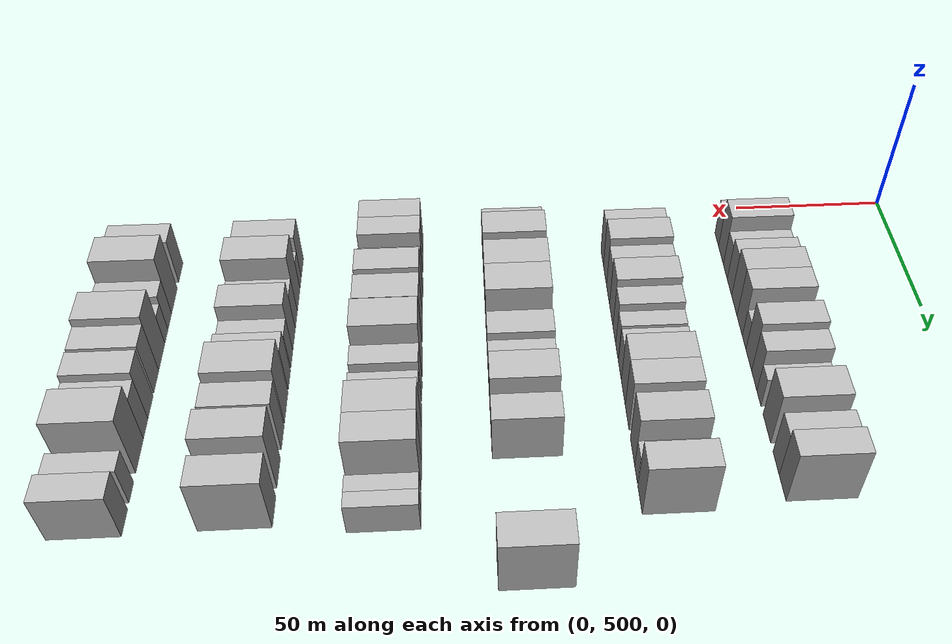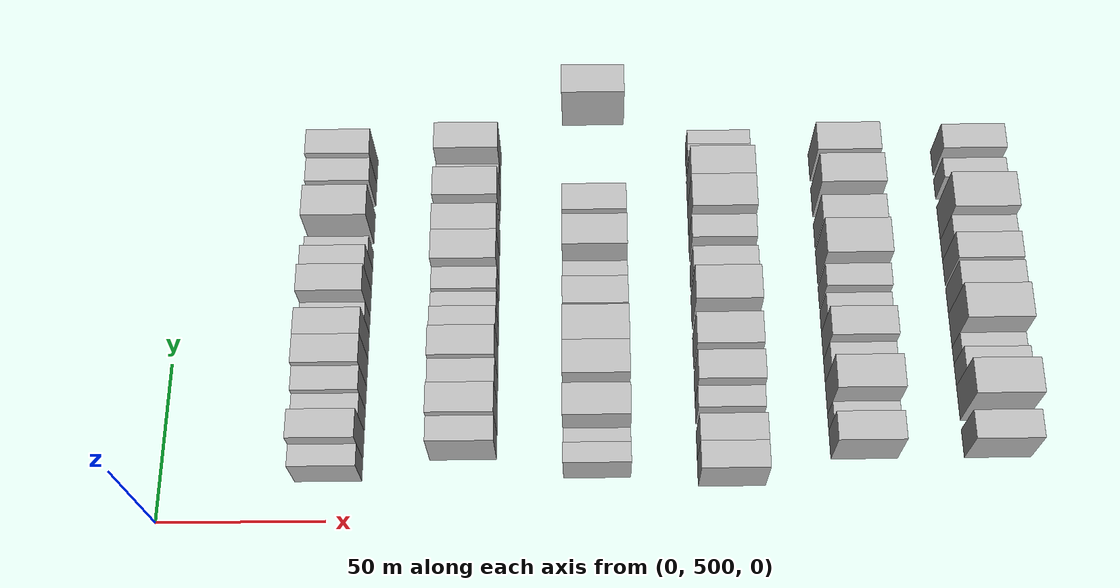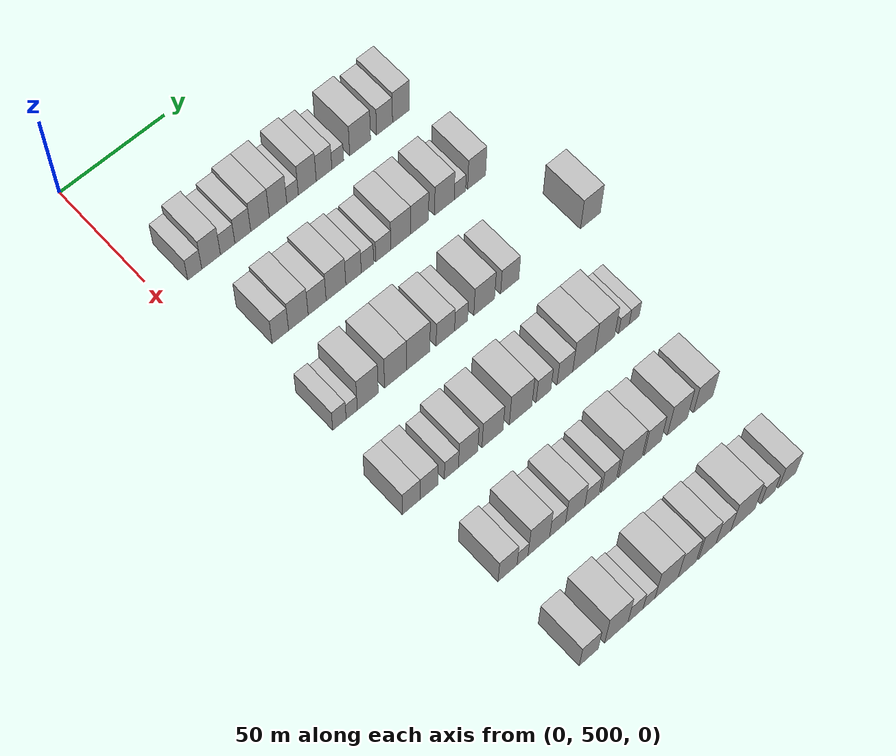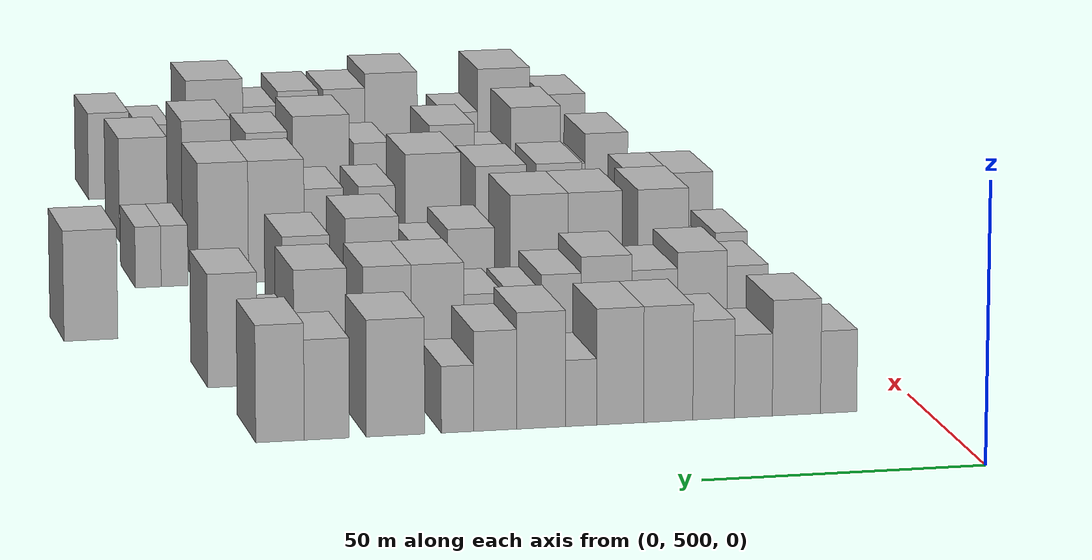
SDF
<sdf version="1.6">
 <world name="default">
  <model name="building_132">
   <static>1</static>
   <pose>50.0000 515.5262 0 0.000000 0.000000 0.000000</pose>
   <link name="link">
    <pose>0 0 7.50 0 0 0</pose>
    <collision name="collision"><geometry><box><size>20.0000 6.6461 15.0000</size></box></geometry></collision>
    <visual name="visual">
     <cast_shadows>0</cast_shadows>
     <geometry><box><size>20.0000 6.6461 15.0000</size></box></geometry>
     <material>
      <script>
       <uri>model://HANNAS_wall/materials/scripts</uri>
       <uri>model://HANNAS_wall/materials/textures</uri>
       <name>vrc/HANNAS_wall</name>
      </script>
     </material>
    </visual>
   </link>
  </model>
  <model name="building_133">
   <static>1</static>
   <pose>50.0000 523.2494 0 0.000000 0.000000 0.000000</pose>
   <link name="link">
    <pose>0 0 10.50 0 0 0</pose>
    <collision name="collision"><geometry><box><size>20.0000 8.8002 21.0000</size></box></geometry></collision>
    <visual name="visual">
     <cast_shadows>0</cast_shadows>
     <geometry><box><size>20.0000 8.8002 21.0000</size></box></geometry>
     <material>
      <script>
       <uri>model://HANNAS_wall/materials/scripts</uri>
       <uri>model://HANNAS_wall/materials/textures</uri>
       <name>vrc/HANNAS_wall</name>
      </script>
     </material>
    </visual>
   </link>
  </model>
  <model name="building_134">
   <static>1</static>
   <pose>50.0000 531.0967 0 0.000000 0.000000 0.000000</pose>
   <link name="link">
    <pose>0 0 7.50 0 0 0</pose>
    <collision name="collision"><geometry><box><size>20.0000 6.8945 15.0000</size></box></geometry></collision>
    <visual name="visual">
     <cast_shadows>0</cast_shadows>
     <geometry><box><size>20.0000 6.8945 15.0000</size></box></geometry>
     <material>
      <script>
       <uri>model://HANNAS_wall/materials/scripts</uri>
       <uri>model://HANNAS_wall/materials/textures</uri>
       <name>vrc/HANNAS_wall</name>
      </script>
     </material>
    </visual>
   </link>
  </model>
  <model name="building_135">
   <static>1</static>
   <pose>50.0000 538.3246 0 0.000000 0.000000 0.000000</pose>
   <link name="link">
    <pose>0 0 9.00 0 0 0</pose>
    <collision name="collision"><geometry><box><size>20.0000 7.5613 18.0000</size></box></geometry></collision>
    <visual name="visual">
     <cast_shadows>0</cast_shadows>
     <geometry><box><size>20.0000 7.5613 18.0000</size></box></geometry>
     <material>
      <script>
       <uri>model://HANNAS_wall/materials/scripts</uri>
       <uri>model://HANNAS_wall/materials/textures</uri>
       <name>vrc/HANNAS_wall</name>
      </script>
     </material>
    </visual>
   </link>
  </model>
  <model name="building_136">
   <static>1</static>
   <pose>50.0000 546.5774 0 0.000000 0.000000 0.000000</pose>
   <link name="link">
    <pose>0 0 10.50 0 0 0</pose>
    <collision name="collision"><geometry><box><size>20.0000 8.9442 21.0000</size></box></geometry></collision>
    <visual name="visual">
     <cast_shadows>0</cast_shadows>
     <geometry><box><size>20.0000 8.9442 21.0000</size></box></geometry>
     <material>
      <script>
       <uri>model://HANNAS_wall/materials/scripts</uri>
       <uri>model://HANNAS_wall/materials/textures</uri>
       <name>vrc/HANNAS_wall</name>
      </script>
     </material>
    </visual>
   </link>
  </model>
  <model name="building_137">
   <static>1</static>
   <pose>50.0000 555.2875 0 0.000000 0.000000 0.000000</pose>
   <link name="link">
    <pose>0 0 10.50 0 0 0</pose>
    <collision name="collision"><geometry><box><size>20.0000 8.4760 21.0000</size></box></geometry></collision>
    <visual name="visual">
     <cast_shadows>0</cast_shadows>
     <geometry><box><size>20.0000 8.4760 21.0000</size></box></geometry>
     <material>
      <script>
       <uri>model://HANNAS_wall/materials/scripts</uri>
       <uri>model://HANNAS_wall/materials/textures</uri>
       <name>vrc/HANNAS_wall</name>
      </script>
     </material>
    </visual>
   </link>
  </model>
  <model name="building_138">
   <static>1</static>
   <pose>50.0000 562.3306 0 0.000000 0.000000 0.000000</pose>
   <link name="link">
    <pose>0 0 6.00 0 0 0</pose>
    <collision name="collision"><geometry><box><size>20.0000 5.6101 12.0000</size></box></geometry></collision>
    <visual name="visual">
     <cast_shadows>0</cast_shadows>
     <geometry><box><size>20.0000 5.6101 12.0000</size></box></geometry>
     <material>
      <script>
       <uri>model://HANNAS_wall/materials/scripts</uri>
       <uri>model://HANNAS_wall/materials/textures</uri>
       <name>vrc/HANNAS_wall</name>
      </script>
     </material>
    </visual>
   </link>
  </model>
  <model name="building_139">
   <static>1</static>
   <pose>50.0000 569.5042 0 0.000000 0.000000 0.000000</pose>
   <link name="link">
    <pose>0 0 10.50 0 0 0</pose>
    <collision name="collision"><geometry><box><size>20.0000 8.7371 21.0000</size></box></geometry></collision>
    <visual name="visual">
     <cast_shadows>0</cast_shadows>
     <geometry><box><size>20.0000 8.7371 21.0000</size></box></geometry>
     <material>
      <script>
       <uri>model://HANNAS_wall/materials/scripts</uri>
       <uri>model://HANNAS_wall/materials/textures</uri>
       <name>vrc/HANNAS_wall</name>
      </script>
     </material>
    </visual>
   </link>
  </model>
  <model name="building_140">
   <static>1</static>
   <pose>50.0000 577.7151 0 0.000000 0.000000 0.000000</pose>
   <link name="link">
    <pose>0 0 9.00 0 0 0</pose>
    <collision name="collision"><geometry><box><size>20.0000 7.6848 18.0000</size></box></geometry></collision>
    <visual name="visual">
     <cast_shadows>0</cast_shadows>
     <geometry><box><size>20.0000 7.6848 18.0000</size></box></geometry>
     <material>
      <script>
       <uri>model://HANNAS_wall/materials/scripts</uri>
       <uri>model://HANNAS_wall/materials/textures</uri>
       <name>vrc/HANNAS_wall</name>
      </script>
     </material>
    </visual>
   </link>
  </model>
  <model name="building_141">
   <static>1</static>
   <pose>50.0000 584.4624 0 0.000000 0.000000 0.000000</pose>
   <link name="link">
    <pose>0 0 6.00 0 0 0</pose>
    <collision name="collision"><geometry><box><size>20.0000 5.8097 12.0000</size></box></geometry></collision>
    <visual name="visual">
     <cast_shadows>0</cast_shadows>
     <geometry><box><size>20.0000 5.8097 12.0000</size></box></geometry>
     <material>
      <script>
       <uri>model://HANNAS_wall/materials/scripts</uri>
       <uri>model://HANNAS_wall/materials/textures</uri>
       <name>vrc/HANNAS_wall</name>
      </script>
     </material>
    </visual>
   </link>
  </model>
  <model name="building_142">
   <static>1</static>
   <pose>50.0000 595.5505 0 0.000000 0.000000 0.000000</pose>
   <link name="link">
    <pose>0 0 10.50 0 0 0</pose>
    <collision name="collision"><geometry><box><size>20.0000 10.3667 21.0000</size></box></geometry></collision>
    <visual name="visual">
     <cast_shadows>0</cast_shadows>
     <geometry><box><size>20.0000 10.3667 21.0000</size></box></geometry>
     <material>
      <script>
       <uri>model://HANNAS_wall/materials/scripts</uri>
       <uri>model://HANNAS_wall/materials/textures</uri>
       <name>vrc/HANNAS_wall</name>
      </script>
     </material>
    </visual>
   </link>
  </model>
  <model name="building_143">
   <static>1</static>
   <pose>50.0000 607.7311 0 0.000000 0.000000 0.000000</pose>
   <link name="link">
    <pose>0 0 9.00 0 0 0</pose>
    <collision name="collision"><geometry><box><size>20.0000 7.9945 18.0000</size></box></geometry></collision>
    <visual name="visual">
     <cast_shadows>0</cast_shadows>
     <geometry><box><size>20.0000 7.9945 18.0000</size></box></geometry>
     <material>
      <script>
       <uri>model://HANNAS_wall/materials/scripts</uri>
       <uri>model://HANNAS_wall/materials/textures</uri>
       <name>vrc/HANNAS_wall</name>
      </script>
     </material>
    </visual>
   </link>
  </model>
  <model name="building_144">
   <static>1</static>
   <pose>50.0000 616.0171 0 0.000000 0.000000 0.000000</pose>
   <link name="link">
    <pose>0 0 10.50 0 0 0</pose>
    <collision name="collision"><geometry><box><size>20.0000 8.5775 21.0000</size></box></geometry></collision>
    <visual name="visual">
     <cast_shadows>0</cast_shadows>
     <geometry><box><size>20.0000 8.5775 21.0000</size></box></geometry>
     <material>
      <script>
       <uri>model://HANNAS_wall/materials/scripts</uri>
       <uri>model://HANNAS_wall/materials/textures</uri>
       <name>vrc/HANNAS_wall</name>
      </script>
     </material>
    </visual>
   </link>
  </model>
  <model name="building_267">
   <static>1</static>
   <pose>90.0000 522.3211 0 0.000000 0.000000 0.000000</pose>
   <link name="link">
    <pose>0 0 9.00 0 0 0</pose>
    <collision name="collision"><geometry><box><size>20.0000 7.7588 18.0000</size></box></geometry></collision>
    <visual name="visual">
     <cast_shadows>0</cast_shadows>
     <geometry><box><size>20.0000 7.7588 18.0000</size></box></geometry>
     <material>
      <script>
       <uri>model://HANNAS_wall/materials/scripts</uri>
       <uri>model://HANNAS_wall/materials/textures</uri>
       <name>vrc/HANNAS_wall</name>
      </script>
     </material>
    </visual>
   </link>
  </model>
  <model name="building_268">
   <static>1</static>
   <pose>90.0000 530.8384 0 0.000000 0.000000 0.000000</pose>
   <link name="link">
    <pose>0 0 10.50 0 0 0</pose>
    <collision name="collision"><geometry><box><size>20.0000 9.2758 21.0000</size></box></geometry></collision>
    <visual name="visual">
     <cast_shadows>0</cast_shadows>
     <geometry><box><size>20.0000 9.2758 21.0000</size></box></geometry>
     <material>
      <script>
       <uri>model://HANNAS_wall/materials/scripts</uri>
       <uri>model://HANNAS_wall/materials/textures</uri>
       <name>vrc/HANNAS_wall</name>
      </script>
     </material>
    </visual>
   </link>
  </model>
  <model name="building_269">
   <static>1</static>
   <pose>90.0000 539.7702 0 0.000000 0.000000 0.000000</pose>
   <link name="link">
    <pose>0 0 9.00 0 0 0</pose>
    <collision name="collision"><geometry><box><size>20.0000 8.5877 18.0000</size></box></geometry></collision>
    <visual name="visual">
     <cast_shadows>0</cast_shadows>
     <geometry><box><size>20.0000 8.5877 18.0000</size></box></geometry>
     <material>
      <script>
       <uri>model://HANNAS_wall/materials/scripts</uri>
       <uri>model://HANNAS_wall/materials/textures</uri>
       <name>vrc/HANNAS_wall</name>
      </script>
     </material>
    </visual>
   </link>
  </model>
  <model name="building_270">
   <static>1</static>
   <pose>90.0000 548.7886 0 0.000000 0.000000 0.000000</pose>
   <link name="link">
    <pose>0 0 10.50 0 0 0</pose>
    <collision name="collision"><geometry><box><size>20.0000 9.4491 21.0000</size></box></geometry></collision>
    <visual name="visual">
     <cast_shadows>0</cast_shadows>
     <geometry><box><size>20.0000 9.4491 21.0000</size></box></geometry>
     <material>
      <script>
       <uri>model://HANNAS_wall/materials/scripts</uri>
       <uri>model://HANNAS_wall/materials/textures</uri>
       <name>vrc/HANNAS_wall</name>
      </script>
     </material>
    </visual>
   </link>
  </model>
  <model name="building_271">
   <static>1</static>
   <pose>90.0000 557.2262 0 0.000000 0.000000 0.000000</pose>
   <link name="link">
    <pose>0 0 9.00 0 0 0</pose>
    <collision name="collision"><geometry><box><size>20.0000 7.4261 18.0000</size></box></geometry></collision>
    <visual name="visual">
     <cast_shadows>0</cast_shadows>
     <geometry><box><size>20.0000 7.4261 18.0000</size></box></geometry>
     <material>
      <script>
       <uri>model://HANNAS_wall/materials/scripts</uri>
       <uri>model://HANNAS_wall/materials/textures</uri>
       <name>vrc/HANNAS_wall</name>
      </script>
     </material>
    </visual>
   </link>
  </model>
  <model name="building_272">
   <static>1</static>
   <pose>90.0000 563.9500 0 0.000000 0.000000 0.000000</pose>
   <link name="link">
    <pose>0 0 7.50 0 0 0</pose>
    <collision name="collision"><geometry><box><size>20.0000 6.0215 15.0000</size></box></geometry></collision>
    <visual name="visual">
     <cast_shadows>0</cast_shadows>
     <geometry><box><size>20.0000 6.0215 15.0000</size></box></geometry>
     <material>
      <script>
       <uri>model://HANNAS_wall/materials/scripts</uri>
       <uri>model://HANNAS_wall/materials/textures</uri>
       <name>vrc/HANNAS_wall</name>
      </script>
     </material>
    </visual>
   </link>
  </model>
  <model name="building_273">
   <static>1</static>
   <pose>90.0000 571.6297 0 0.000000 0.000000 0.000000</pose>
   <link name="link">
    <pose>0 0 7.50 0 0 0</pose>
    <collision name="collision"><geometry><box><size>20.0000 7.3379 15.0000</size></box></geometry></collision>
    <visual name="visual">
     <cast_shadows>0</cast_shadows>
     <geometry><box><size>20.0000 7.3379 15.0000</size></box></geometry>
     <material>
      <script>
       <uri>model://HANNAS_wall/materials/scripts</uri>
       <uri>model://HANNAS_wall/materials/textures</uri>
       <name>vrc/HANNAS_wall</name>
      </script>
     </material>
    </visual>
   </link>
  </model>
  <model name="building_274">
   <static>1</static>
   <pose>90.0000 580.1791 0 0.000000 0.000000 0.000000</pose>
   <link name="link">
    <pose>0 0 10.50 0 0 0</pose>
    <collision name="collision"><geometry><box><size>20.0000 9.7610 21.0000</size></box></geometry></collision>
    <visual name="visual">
     <cast_shadows>0</cast_shadows>
     <geometry><box><size>20.0000 9.7610 21.0000</size></box></geometry>
     <material>
      <script>
       <uri>model://HANNAS_wall/materials/scripts</uri>
       <uri>model://HANNAS_wall/materials/textures</uri>
       <name>vrc/HANNAS_wall</name>
      </script>
     </material>
    </visual>
   </link>
  </model>
  <model name="building_275">
   <static>1</static>
   <pose>90.0000 589.4757 0 0.000000 0.000000 0.000000</pose>
   <link name="link">
    <pose>0 0 10.50 0 0 0</pose>
    <collision name="collision"><geometry><box><size>20.0000 8.8322 21.0000</size></box></geometry></collision>
    <visual name="visual">
     <cast_shadows>0</cast_shadows>
     <geometry><box><size>20.0000 8.8322 21.0000</size></box></geometry>
     <material>
      <script>
       <uri>model://HANNAS_wall/materials/scripts</uri>
       <uri>model://HANNAS_wall/materials/textures</uri>
       <name>vrc/HANNAS_wall</name>
      </script>
     </material>
    </visual>
   </link>
  </model>
  <model name="building_276">
   <static>1</static>
   <pose>90.0000 601.7635 0 0.000000 0.000000 0.000000</pose>
   <link name="link">
    <pose>0 0 10.50 0 0 0</pose>
    <collision name="collision"><geometry><box><size>20.0000 9.7435 21.0000</size></box></geometry></collision>
    <visual name="visual">
     <cast_shadows>0</cast_shadows>
     <geometry><box><size>20.0000 9.7435 21.0000</size></box></geometry>
     <material>
      <script>
       <uri>model://HANNAS_wall/materials/scripts</uri>
       <uri>model://HANNAS_wall/materials/textures</uri>
       <name>vrc/HANNAS_wall</name>
      </script>
     </material>
    </visual>
   </link>
  </model>
  <model name="building_277">
   <static>1</static>
   <pose>90.0000 609.4998 0 0.000000 0.000000 0.000000</pose>
   <link name="link">
    <pose>0 0 6.00 0 0 0</pose>
    <collision name="collision"><geometry><box><size>20.0000 5.7291 12.0000</size></box></geometry></collision>
    <visual name="visual">
     <cast_shadows>0</cast_shadows>
     <geometry><box><size>20.0000 5.7291 12.0000</size></box></geometry>
     <material>
      <script>
       <uri>model://HANNAS_wall/materials/scripts</uri>
       <uri>model://HANNAS_wall/materials/textures</uri>
       <name>vrc/HANNAS_wall</name>
      </script>
     </material>
    </visual>
   </link>
  </model>
  <model name="building_278">
   <static>1</static>
   <pose>90.0000 617.8781 0 0.000000 0.000000 0.000000</pose>
   <link name="link">
    <pose>0 0 10.50 0 0 0</pose>
    <collision name="collision"><geometry><box><size>20.0000 9.0274 21.0000</size></box></geometry></collision>
    <visual name="visual">
     <cast_shadows>0</cast_shadows>
     <geometry><box><size>20.0000 9.0274 21.0000</size></box></geometry>
     <material>
      <script>
       <uri>model://HANNAS_wall/materials/scripts</uri>
       <uri>model://HANNAS_wall/materials/textures</uri>
       <name>vrc/HANNAS_wall</name>
      </script>
     </material>
    </visual>
   </link>
  </model>
  <model name="building_403">
   <static>1</static>
   <pose>130.0000 515.5641 0 0.000000 0.000000 0.000000</pose>
   <link name="link">
    <pose>0 0 7.50 0 0 0</pose>
    <collision name="collision"><geometry><box><size>20.0000 6.2532 15.0000</size></box></geometry></collision>
    <visual name="visual">
     <cast_shadows>0</cast_shadows>
     <geometry><box><size>20.0000 6.2532 15.0000</size></box></geometry>
     <material>
      <script>
       <uri>model://HANNAS_wall/materials/scripts</uri>
       <uri>model://HANNAS_wall/materials/textures</uri>
       <name>vrc/HANNAS_wall</name>
      </script>
     </material>
    </visual>
   </link>
  </model>
  <model name="building_404">
   <static>1</static>
   <pose>130.0000 521.3221 0 0.000000 0.000000 0.000000</pose>
   <link name="link">
    <pose>0 0 6.00 0 0 0</pose>
    <collision name="collision"><geometry><box><size>20.0000 5.2627 12.0000</size></box></geometry></collision>
    <visual name="visual">
     <cast_shadows>0</cast_shadows>
     <geometry><box><size>20.0000 5.2627 12.0000</size></box></geometry>
     <material>
      <script>
       <uri>model://HANNAS_wall/materials/scripts</uri>
       <uri>model://HANNAS_wall/materials/textures</uri>
       <name>vrc/HANNAS_wall</name>
      </script>
     </material>
    </visual>
   </link>
  </model>
  <model name="building_405">
   <static>1</static>
   <pose>130.0000 528.8703 0 0.000000 0.000000 0.000000</pose>
   <link name="link">
    <pose>0 0 12.00 0 0 0</pose>
    <collision name="collision"><geometry><box><size>20.0000 9.8338 24.0000</size></box></geometry></collision>
    <visual name="visual">
     <cast_shadows>0</cast_shadows>
     <geometry><box><size>20.0000 9.8338 24.0000</size></box></geometry>
     <material>
      <script>
       <uri>model://HANNAS_wall/materials/scripts</uri>
       <uri>model://HANNAS_wall/materials/textures</uri>
       <name>vrc/HANNAS_wall</name>
      </script>
     </material>
    </visual>
   </link>
  </model>
  <model name="building_406">
   <static>1</static>
   <pose>130.0000 542.0344 0 0.000000 0.000000 0.000000</pose>
   <link name="link">
    <pose>0 0 12.00 0 0 0</pose>
    <collision name="collision"><geometry><box><size>20.0000 10.4944 24.0000</size></box></geometry></collision>
    <visual name="visual">
     <cast_shadows>0</cast_shadows>
     <geometry><box><size>20.0000 10.4944 24.0000</size></box></geometry>
     <material>
      <script>
       <uri>model://HANNAS_wall/materials/scripts</uri>
       <uri>model://HANNAS_wall/materials/textures</uri>
       <name>vrc/HANNAS_wall</name>
      </script>
     </material>
    </visual>
   </link>
  </model>
  <model name="building_407">
   <static>1</static>
   <pose>130.0000 552.8558 0 0.000000 0.000000 0.000000</pose>
   <link name="link">
    <pose>0 0 12.00 0 0 0</pose>
    <collision name="collision"><geometry><box><size>20.0000 11.1483 24.0000</size></box></geometry></collision>
    <visual name="visual">
     <cast_shadows>0</cast_shadows>
     <geometry><box><size>20.0000 11.1483 24.0000</size></box></geometry>
     <material>
      <script>
       <uri>model://HANNAS_wall/materials/scripts</uri>
       <uri>model://HANNAS_wall/materials/textures</uri>
       <name>vrc/HANNAS_wall</name>
      </script>
     </material>
    </visual>
   </link>
  </model>
  <model name="building_408">
   <static>1</static>
   <pose>130.0000 565.9005 0 0.000000 0.000000 0.000000</pose>
   <link name="link">
    <pose>0 0 9.00 0 0 0</pose>
    <collision name="collision"><geometry><box><size>20.0000 8.9411 18.0000</size></box></geometry></collision>
    <visual name="visual">
     <cast_shadows>0</cast_shadows>
     <geometry><box><size>20.0000 8.9411 18.0000</size></box></geometry>
     <material>
      <script>
       <uri>model://HANNAS_wall/materials/scripts</uri>
       <uri>model://HANNAS_wall/materials/textures</uri>
       <name>vrc/HANNAS_wall</name>
      </script>
     </material>
    </visual>
   </link>
  </model>
  <model name="building_409">
   <static>1</static>
   <pose>130.0000 573.5513 0 0.000000 0.000000 0.000000</pose>
   <link name="link">
    <pose>0 0 7.50 0 0 0</pose>
    <collision name="collision"><geometry><box><size>20.0000 6.3604 15.0000</size></box></geometry></collision>
    <visual name="visual">
     <cast_shadows>0</cast_shadows>
     <geometry><box><size>20.0000 6.3604 15.0000</size></box></geometry>
     <material>
      <script>
       <uri>model://HANNAS_wall/materials/scripts</uri>
       <uri>model://HANNAS_wall/materials/textures</uri>
       <name>vrc/HANNAS_wall</name>
      </script>
     </material>
    </visual>
   </link>
  </model>
  <model name="building_410">
   <static>1</static>
   <pose>130.0000 584.8216 0 0.000000 0.000000 0.000000</pose>
   <link name="link">
    <pose>0 0 10.50 0 0 0</pose>
    <collision name="collision"><geometry><box><size>20.0000 10.1803 21.0000</size></box></geometry></collision>
    <visual name="visual">
     <cast_shadows>0</cast_shadows>
     <geometry><box><size>20.0000 10.1803 21.0000</size></box></geometry>
     <material>
      <script>
       <uri>model://HANNAS_wall/materials/scripts</uri>
       <uri>model://HANNAS_wall/materials/textures</uri>
       <name>vrc/HANNAS_wall</name>
      </script>
     </material>
    </visual>
   </link>
  </model>
  <model name="building_411">
   <static>1</static>
   <pose>130.0000 597.3953 0 0.000000 0.000000 0.000000</pose>
   <link name="link">
    <pose>0 0 9.00 0 0 0</pose>
    <collision name="collision"><geometry><box><size>20.0000 8.9670 18.0000</size></box></geometry></collision>
    <visual name="visual">
     <cast_shadows>0</cast_shadows>
     <geometry><box><size>20.0000 8.9670 18.0000</size></box></geometry>
     <material>
      <script>
       <uri>model://HANNAS_wall/materials/scripts</uri>
       <uri>model://HANNAS_wall/materials/textures</uri>
       <name>vrc/HANNAS_wall</name>
      </script>
     </material>
    </visual>
   </link>
  </model>
  <model name="building_412">
   <static>1</static>
   <pose>130.0000 638.0306 0 0.000000 0.000000 0.000000</pose>
   <link name="link">
    <pose>0 0 10.50 0 0 0</pose>
    <collision name="collision"><geometry><box><size>20.0000 10.1012 21.0000</size></box></geometry></collision>
    <visual name="visual">
     <cast_shadows>0</cast_shadows>
     <geometry><box><size>20.0000 10.1012 21.0000</size></box></geometry>
     <material>
      <script>
       <uri>model://HANNAS_wall/materials/scripts</uri>
       <uri>model://HANNAS_wall/materials/textures</uri>
       <name>vrc/HANNAS_wall</name>
      </script>
     </material>
    </visual>
   </link>
  </model>
  <model name="building_541">
   <static>1</static>
   <pose>170.0000 513.5958 0 0.000000 0.000000 0.000000</pose>
   <link name="link">
    <pose>0 0 9.00 0 0 0</pose>
    <collision name="collision"><geometry><box><size>20.0000 8.2588 18.0000</size></box></geometry></collision>
    <visual name="visual">
     <cast_shadows>0</cast_shadows>
     <geometry><box><size>20.0000 8.2588 18.0000</size></box></geometry>
     <material>
      <script>
       <uri>model://HANNAS_wall/materials/scripts</uri>
       <uri>model://HANNAS_wall/materials/textures</uri>
       <name>vrc/HANNAS_wall</name>
      </script>
     </material>
    </visual>
   </link>
  </model>
  <model name="building_542">
   <static>1</static>
   <pose>170.0000 521.8927 0 0.000000 0.000000 0.000000</pose>
   <link name="link">
    <pose>0 0 9.00 0 0 0</pose>
    <collision name="collision"><geometry><box><size>20.0000 8.3351 18.0000</size></box></geometry></collision>
    <visual name="visual">
     <cast_shadows>0</cast_shadows>
     <geometry><box><size>20.0000 8.3351 18.0000</size></box></geometry>
     <material>
      <script>
       <uri>model://HANNAS_wall/materials/scripts</uri>
       <uri>model://HANNAS_wall/materials/textures</uri>
       <name>vrc/HANNAS_wall</name>
      </script>
     </material>
    </visual>
   </link>
  </model>
  <model name="building_543">
   <static>1</static>
   <pose>170.0000 532.3961 0 0.000000 0.000000 0.000000</pose>
   <link name="link">
    <pose>0 0 7.50 0 0 0</pose>
    <collision name="collision"><geometry><box><size>20.0000 6.6717 15.0000</size></box></geometry></collision>
    <visual name="visual">
     <cast_shadows>0</cast_shadows>
     <geometry><box><size>20.0000 6.6717 15.0000</size></box></geometry>
     <material>
      <script>
       <uri>model://HANNAS_wall/materials/scripts</uri>
       <uri>model://HANNAS_wall/materials/textures</uri>
       <name>vrc/HANNAS_wall</name>
      </script>
     </material>
    </visual>
   </link>
  </model>
  <model name="building_544">
   <static>1</static>
   <pose>170.0000 540.2897 0 0.000000 0.000000 0.000000</pose>
   <link name="link">
    <pose>0 0 10.50 0 0 0</pose>
    <collision name="collision"><geometry><box><size>20.0000 9.1155 21.0000</size></box></geometry></collision>
    <visual name="visual">
     <cast_shadows>0</cast_shadows>
     <geometry><box><size>20.0000 9.1155 21.0000</size></box></geometry>
     <material>
      <script>
       <uri>model://HANNAS_wall/materials/scripts</uri>
       <uri>model://HANNAS_wall/materials/textures</uri>
       <name>vrc/HANNAS_wall</name>
      </script>
     </material>
    </visual>
   </link>
  </model>
  <model name="building_545">
   <static>1</static>
   <pose>170.0000 551.8813 0 0.000000 0.000000 0.000000</pose>
   <link name="link">
    <pose>0 0 10.50 0 0 0</pose>
    <collision name="collision"><geometry><box><size>20.0000 10.0677 21.0000</size></box></geometry></collision>
    <visual name="visual">
     <cast_shadows>0</cast_shadows>
     <geometry><box><size>20.0000 10.0677 21.0000</size></box></geometry>
     <material>
      <script>
       <uri>model://HANNAS_wall/materials/scripts</uri>
       <uri>model://HANNAS_wall/materials/textures</uri>
       <name>vrc/HANNAS_wall</name>
      </script>
     </material>
    </visual>
   </link>
  </model>
  <model name="building_546">
   <static>1</static>
   <pose>170.0000 565.3752 0 0.000000 0.000000 0.000000</pose>
   <link name="link">
    <pose>0 0 12.00 0 0 0</pose>
    <collision name="collision"><geometry><box><size>20.0000 10.9200 24.0000</size></box></geometry></collision>
    <visual name="visual">
     <cast_shadows>0</cast_shadows>
     <geometry><box><size>20.0000 10.9200 24.0000</size></box></geometry>
     <material>
      <script>
       <uri>model://HANNAS_wall/materials/scripts</uri>
       <uri>model://HANNAS_wall/materials/textures</uri>
       <name>vrc/HANNAS_wall</name>
      </script>
     </material>
    </visual>
   </link>
  </model>
  <model name="building_547">
   <static>1</static>
   <pose>170.0000 576.4407 0 0.000000 0.000000 0.000000</pose>
   <link name="link">
    <pose>0 0 9.00 0 0 0</pose>
    <collision name="collision"><geometry><box><size>20.0000 7.2109 18.0000</size></box></geometry></collision>
    <visual name="visual">
     <cast_shadows>0</cast_shadows>
     <geometry><box><size>20.0000 7.2109 18.0000</size></box></geometry>
     <material>
      <script>
       <uri>model://HANNAS_wall/materials/scripts</uri>
       <uri>model://HANNAS_wall/materials/textures</uri>
       <name>vrc/HANNAS_wall</name>
      </script>
     </material>
    </visual>
   </link>
  </model>
  <model name="building_548">
   <static>1</static>
   <pose>170.0000 586.9079 0 0.000000 0.000000 0.000000</pose>
   <link name="link">
    <pose>0 0 9.00 0 0 0</pose>
    <collision name="collision"><geometry><box><size>20.0000 7.7235 18.0000</size></box></geometry></collision>
    <visual name="visual">
     <cast_shadows>0</cast_shadows>
     <geometry><box><size>20.0000 7.7235 18.0000</size></box></geometry>
     <material>
      <script>
       <uri>model://HANNAS_wall/materials/scripts</uri>
       <uri>model://HANNAS_wall/materials/textures</uri>
       <name>vrc/HANNAS_wall</name>
      </script>
     </material>
    </visual>
   </link>
  </model>
  <model name="building_549">
   <static>1</static>
   <pose>170.0000 596.2487 0 0.000000 0.000000 0.000000</pose>
   <link name="link">
    <pose>0 0 12.00 0 0 0</pose>
    <collision name="collision"><geometry><box><size>20.0000 10.9581 24.0000</size></box></geometry></collision>
    <visual name="visual">
     <cast_shadows>0</cast_shadows>
     <geometry><box><size>20.0000 10.9581 24.0000</size></box></geometry>
     <material>
      <script>
       <uri>model://HANNAS_wall/materials/scripts</uri>
       <uri>model://HANNAS_wall/materials/textures</uri>
       <name>vrc/HANNAS_wall</name>
      </script>
     </material>
    </visual>
   </link>
  </model>
  <model name="building_550">
   <static>1</static>
   <pose>170.0000 606.6395 0 0.000000 0.000000 0.000000</pose>
   <link name="link">
    <pose>0 0 12.00 0 0 0</pose>
    <collision name="collision"><geometry><box><size>20.0000 9.8235 24.0000</size></box></geometry></collision>
    <visual name="visual">
     <cast_shadows>0</cast_shadows>
     <geometry><box><size>20.0000 9.8235 24.0000</size></box></geometry>
     <material>
      <script>
       <uri>model://HANNAS_wall/materials/scripts</uri>
       <uri>model://HANNAS_wall/materials/textures</uri>
       <name>vrc/HANNAS_wall</name>
      </script>
     </material>
    </visual>
   </link>
  </model>
  <model name="building_551">
   <static>1</static>
   <pose>170.0000 616.1793 0 0.000000 0.000000 0.000000</pose>
   <link name="link">
    <pose>0 0 6.00 0 0 0</pose>
    <collision name="collision"><geometry><box><size>20.0000 5.2561 12.0000</size></box></geometry></collision>
    <visual name="visual">
     <cast_shadows>0</cast_shadows>
     <geometry><box><size>20.0000 5.2561 12.0000</size></box></geometry>
     <material>
      <script>
       <uri>model://HANNAS_wall/materials/scripts</uri>
       <uri>model://HANNAS_wall/materials/textures</uri>
       <name>vrc/HANNAS_wall</name>
      </script>
     </material>
    </visual>
   </link>
  </model>
  <model name="building_552">
   <static>1</static>
   <pose>170.0000 621.3122 0 0.000000 0.000000 0.000000</pose>
   <link name="link">
    <pose>0 0 6.00 0 0 0</pose>
    <collision name="collision"><geometry><box><size>20.0000 5.0098 12.0000</size></box></geometry></collision>
    <visual name="visual">
     <cast_shadows>0</cast_shadows>
     <geometry><box><size>20.0000 5.0098 12.0000</size></box></geometry>
     <material>
      <script>
       <uri>model://HANNAS_wall/materials/scripts</uri>
       <uri>model://HANNAS_wall/materials/textures</uri>
       <name>vrc/HANNAS_wall</name>
      </script>
     </material>
    </visual>
   </link>
  </model>
  <model name="building_684">
   <static>1</static>
   <pose>210.0000 521.8727 0 0.000000 0.000000 0.000000</pose>
   <link name="link">
    <pose>0 0 9.00 0 0 0</pose>
    <collision name="collision"><geometry><box><size>20.0000 8.8492 18.0000</size></box></geometry></collision>
    <visual name="visual">
     <cast_shadows>0</cast_shadows>
     <geometry><box><size>20.0000 8.8492 18.0000</size></box></geometry>
     <material>
      <script>
       <uri>model://HANNAS_wall/materials/scripts</uri>
       <uri>model://HANNAS_wall/materials/textures</uri>
       <name>vrc/HANNAS_wall</name>
      </script>
     </material>
    </visual>
   </link>
  </model>
  <model name="building_685">
   <static>1</static>
   <pose>210.0000 528.8601 0 0.000000 0.000000 0.000000</pose>
   <link name="link">
    <pose>0 0 6.00 0 0 0</pose>
    <collision name="collision"><geometry><box><size>20.0000 5.1255 12.0000</size></box></geometry></collision>
    <visual name="visual">
     <cast_shadows>0</cast_shadows>
     <geometry><box><size>20.0000 5.1255 12.0000</size></box></geometry>
     <material>
      <script>
       <uri>model://HANNAS_wall/materials/scripts</uri>
       <uri>model://HANNAS_wall/materials/textures</uri>
       <name>vrc/HANNAS_wall</name>
      </script>
     </material>
    </visual>
   </link>
  </model>
  <model name="building_686">
   <static>1</static>
   <pose>210.0000 536.5285 0 0.000000 0.000000 0.000000</pose>
   <link name="link">
    <pose>0 0 12.00 0 0 0</pose>
    <collision name="collision"><geometry><box><size>20.0000 10.2111 24.0000</size></box></geometry></collision>
    <visual name="visual">
     <cast_shadows>0</cast_shadows>
     <geometry><box><size>20.0000 10.2111 24.0000</size></box></geometry>
     <material>
      <script>
       <uri>model://HANNAS_wall/materials/scripts</uri>
       <uri>model://HANNAS_wall/materials/textures</uri>
       <name>vrc/HANNAS_wall</name>
      </script>
     </material>
    </visual>
   </link>
  </model>
  <model name="building_687">
   <static>1</static>
   <pose>210.0000 545.3719 0 0.000000 0.000000 0.000000</pose>
   <link name="link">
    <pose>0 0 7.50 0 0 0</pose>
    <collision name="collision"><geometry><box><size>20.0000 7.4758 15.0000</size></box></geometry></collision>
    <visual name="visual">
     <cast_shadows>0</cast_shadows>
     <geometry><box><size>20.0000 7.4758 15.0000</size></box></geometry>
     <material>
      <script>
       <uri>model://HANNAS_wall/materials/scripts</uri>
       <uri>model://HANNAS_wall/materials/textures</uri>
       <name>vrc/HANNAS_wall</name>
      </script>
     </material>
    </visual>
   </link>
  </model>
  <model name="building_688">
   <static>1</static>
   <pose>210.0000 553.6982 0 0.000000 0.000000 0.000000</pose>
   <link name="link">
    <pose>0 0 10.50 0 0 0</pose>
    <collision name="collision"><geometry><box><size>20.0000 9.1766 21.0000</size></box></geometry></collision>
    <visual name="visual">
     <cast_shadows>0</cast_shadows>
     <geometry><box><size>20.0000 9.1766 21.0000</size></box></geometry>
     <material>
      <script>
       <uri>model://HANNAS_wall/materials/scripts</uri>
       <uri>model://HANNAS_wall/materials/textures</uri>
       <name>vrc/HANNAS_wall</name>
      </script>
     </material>
    </visual>
   </link>
  </model>
  <model name="building_689">
   <static>1</static>
   <pose>210.0000 561.7894 0 0.000000 0.000000 0.000000</pose>
   <link name="link">
    <pose>0 0 7.50 0 0 0</pose>
    <collision name="collision"><geometry><box><size>20.0000 7.0058 15.0000</size></box></geometry></collision>
    <visual name="visual">
     <cast_shadows>0</cast_shadows>
     <geometry><box><size>20.0000 7.0058 15.0000</size></box></geometry>
     <material>
      <script>
       <uri>model://HANNAS_wall/materials/scripts</uri>
       <uri>model://HANNAS_wall/materials/textures</uri>
       <name>vrc/HANNAS_wall</name>
      </script>
     </material>
    </visual>
   </link>
  </model>
  <model name="building_690">
   <static>1</static>
   <pose>210.0000 569.9655 0 0.000000 0.000000 0.000000</pose>
   <link name="link">
    <pose>0 0 9.00 0 0 0</pose>
    <collision name="collision"><geometry><box><size>20.0000 7.3466 18.0000</size></box></geometry></collision>
    <visual name="visual">
     <cast_shadows>0</cast_shadows>
     <geometry><box><size>20.0000 7.3466 18.0000</size></box></geometry>
     <material>
      <script>
       <uri>model://HANNAS_wall/materials/scripts</uri>
       <uri>model://HANNAS_wall/materials/textures</uri>
       <name>vrc/HANNAS_wall</name>
      </script>
     </material>
    </visual>
   </link>
  </model>
  <model name="building_691">
   <static>1</static>
   <pose>210.0000 580.3676 0 0.000000 0.000000 0.000000</pose>
   <link name="link">
    <pose>0 0 12.00 0 0 0</pose>
    <collision name="collision"><geometry><box><size>20.0000 11.4576 24.0000</size></box></geometry></collision>
    <visual name="visual">
     <cast_shadows>0</cast_shadows>
     <geometry><box><size>20.0000 11.4576 24.0000</size></box></geometry>
     <material>
      <script>
       <uri>model://HANNAS_wall/materials/scripts</uri>
       <uri>model://HANNAS_wall/materials/textures</uri>
       <name>vrc/HANNAS_wall</name>
      </script>
     </material>
    </visual>
   </link>
  </model>
  <model name="building_692">
   <static>1</static>
   <pose>210.0000 591.3234 0 0.000000 0.000000 0.000000</pose>
   <link name="link">
    <pose>0 0 10.50 0 0 0</pose>
    <collision name="collision"><geometry><box><size>20.0000 8.4539 21.0000</size></box></geometry></collision>
    <visual name="visual">
     <cast_shadows>0</cast_shadows>
     <geometry><box><size>20.0000 8.4539 21.0000</size></box></geometry>
     <material>
      <script>
       <uri>model://HANNAS_wall/materials/scripts</uri>
       <uri>model://HANNAS_wall/materials/textures</uri>
       <name>vrc/HANNAS_wall</name>
      </script>
     </material>
    </visual>
   </link>
  </model>
  <model name="building_693">
   <static>1</static>
   <pose>210.0000 603.5161 0 0.000000 0.000000 0.000000</pose>
   <link name="link">
    <pose>0 0 12.00 0 0 0</pose>
    <collision name="collision"><geometry><box><size>20.0000 9.9314 24.0000</size></box></geometry></collision>
    <visual name="visual">
     <cast_shadows>0</cast_shadows>
     <geometry><box><size>20.0000 9.9314 24.0000</size></box></geometry>
     <material>
      <script>
       <uri>model://HANNAS_wall/materials/scripts</uri>
       <uri>model://HANNAS_wall/materials/textures</uri>
       <name>vrc/HANNAS_wall</name>
      </script>
     </material>
    </visual>
   </link>
  </model>
  <model name="building_694">
   <static>1</static>
   <pose>210.0000 616.3076 0 0.000000 0.000000 0.000000</pose>
   <link name="link">
    <pose>0 0 10.50 0 0 0</pose>
    <collision name="collision"><geometry><box><size>20.0000 9.6517 21.0000</size></box></geometry></collision>
    <visual name="visual">
     <cast_shadows>0</cast_shadows>
     <geometry><box><size>20.0000 9.6517 21.0000</size></box></geometry>
     <material>
      <script>
       <uri>model://HANNAS_wall/materials/scripts</uri>
       <uri>model://HANNAS_wall/materials/textures</uri>
       <name>vrc/HANNAS_wall</name>
      </script>
     </material>
    </visual>
   </link>
  </model>
  <model name="building_815">
   <static>1</static>
   <pose>250.0000 521.8545 0 0.000000 0.000000 0.000000</pose>
   <link name="link">
    <pose>0 0 9.00 0 0 0</pose>
    <collision name="collision"><geometry><box><size>20.0000 8.8026 18.0000</size></box></geometry></collision>
    <visual name="visual">
     <cast_shadows>0</cast_shadows>
     <geometry><box><size>20.0000 8.8026 18.0000</size></box></geometry>
     <material>
      <script>
       <uri>model://HANNAS_wall/materials/scripts</uri>
       <uri>model://HANNAS_wall/materials/textures</uri>
       <name>vrc/HANNAS_wall</name>
      </script>
     </material>
    </visual>
   </link>
  </model>
  <model name="building_816">
   <static>1</static>
   <pose>250.0000 534.7365 0 0.000000 0.000000 0.000000</pose>
   <link name="link">
    <pose>0 0 12.00 0 0 0</pose>
    <collision name="collision"><geometry><box><size>20.0000 10.9612 24.0000</size></box></geometry></collision>
    <visual name="visual">
     <cast_shadows>0</cast_shadows>
     <geometry><box><size>20.0000 10.9612 24.0000</size></box></geometry>
     <material>
      <script>
       <uri>model://HANNAS_wall/materials/scripts</uri>
       <uri>model://HANNAS_wall/materials/textures</uri>
       <name>vrc/HANNAS_wall</name>
      </script>
     </material>
    </visual>
   </link>
  </model>
  <model name="building_817">
   <static>1</static>
   <pose>250.0000 543.7622 0 0.000000 0.000000 0.000000</pose>
   <link name="link">
    <pose>0 0 7.50 0 0 0</pose>
    <collision name="collision"><geometry><box><size>20.0000 7.0902 15.0000</size></box></geometry></collision>
    <visual name="visual">
     <cast_shadows>0</cast_shadows>
     <geometry><box><size>20.0000 7.0902 15.0000</size></box></geometry>
     <material>
      <script>
       <uri>model://HANNAS_wall/materials/scripts</uri>
       <uri>model://HANNAS_wall/materials/textures</uri>
       <name>vrc/HANNAS_wall</name>
      </script>
     </material>
    </visual>
   </link>
  </model>
  <model name="building_818">
   <static>1</static>
   <pose>250.0000 550.1596 0 0.000000 0.000000 0.000000</pose>
   <link name="link">
    <pose>0 0 6.00 0 0 0</pose>
    <collision name="collision"><geometry><box><size>20.0000 5.7047 12.0000</size></box></geometry></collision>
    <visual name="visual">
     <cast_shadows>0</cast_shadows>
     <geometry><box><size>20.0000 5.7047 12.0000</size></box></geometry>
     <material>
      <script>
       <uri>model://HANNAS_wall/materials/scripts</uri>
       <uri>model://HANNAS_wall/materials/textures</uri>
       <name>vrc/HANNAS_wall</name>
      </script>
     </material>
    </visual>
   </link>
  </model>
  <model name="building_819">
   <static>1</static>
   <pose>250.0000 558.5359 0 0.000000 0.000000 0.000000</pose>
   <link name="link">
    <pose>0 0 12.00 0 0 0</pose>
    <collision name="collision"><geometry><box><size>20.0000 11.0479 24.0000</size></box></geometry></collision>
    <visual name="visual">
     <cast_shadows>0</cast_shadows>
     <geometry><box><size>20.0000 11.0479 24.0000</size></box></geometry>
     <material>
      <script>
       <uri>model://HANNAS_wall/materials/scripts</uri>
       <uri>model://HANNAS_wall/materials/textures</uri>
       <name>vrc/HANNAS_wall</name>
      </script>
     </material>
    </visual>
   </link>
  </model>
  <model name="building_820">
   <static>1</static>
   <pose>250.0000 568.4362 0 0.000000 0.000000 0.000000</pose>
   <link name="link">
    <pose>0 0 10.50 0 0 0</pose>
    <collision name="collision"><geometry><box><size>20.0000 8.7527 21.0000</size></box></geometry></collision>
    <visual name="visual">
     <cast_shadows>0</cast_shadows>
     <geometry><box><size>20.0000 8.7527 21.0000</size></box></geometry>
     <material>
      <script>
       <uri>model://HANNAS_wall/materials/scripts</uri>
       <uri>model://HANNAS_wall/materials/textures</uri>
       <name>vrc/HANNAS_wall</name>
      </script>
     </material>
    </visual>
   </link>
  </model>
  <model name="building_821">
   <static>1</static>
   <pose>250.0000 578.0953 0 0.000000 0.000000 0.000000</pose>
   <link name="link">
    <pose>0 0 10.50 0 0 0</pose>
    <collision name="collision"><geometry><box><size>20.0000 8.5654 21.0000</size></box></geometry></collision>
    <visual name="visual">
     <cast_shadows>0</cast_shadows>
     <geometry><box><size>20.0000 8.5654 21.0000</size></box></geometry>
     <material>
      <script>
       <uri>model://HANNAS_wall/materials/scripts</uri>
       <uri>model://HANNAS_wall/materials/textures</uri>
       <name>vrc/HANNAS_wall</name>
      </script>
     </material>
    </visual>
   </link>
  </model>
  <model name="building_822">
   <static>1</static>
   <pose>250.0000 585.9854 0 0.000000 0.000000 0.000000</pose>
   <link name="link">
    <pose>0 0 9.00 0 0 0</pose>
    <collision name="collision"><geometry><box><size>20.0000 7.2149 18.0000</size></box></geometry></collision>
    <visual name="visual">
     <cast_shadows>0</cast_shadows>
     <geometry><box><size>20.0000 7.2149 18.0000</size></box></geometry>
     <material>
      <script>
       <uri>model://HANNAS_wall/materials/scripts</uri>
       <uri>model://HANNAS_wall/materials/textures</uri>
       <name>vrc/HANNAS_wall</name>
      </script>
     </material>
    </visual>
   </link>
  </model>
  <model name="building_823">
   <static>1</static>
   <pose>250.0000 595.5070 0 0.000000 0.000000 0.000000</pose>
   <link name="link">
    <pose>0 0 12.00 0 0 0</pose>
    <collision name="collision"><geometry><box><size>20.0000 11.8282 24.0000</size></box></geometry></collision>
    <visual name="visual">
     <cast_shadows>0</cast_shadows>
     <geometry><box><size>20.0000 11.8282 24.0000</size></box></geometry>
     <material>
      <script>
       <uri>model://HANNAS_wall/materials/scripts</uri>
       <uri>model://HANNAS_wall/materials/textures</uri>
       <name>vrc/HANNAS_wall</name>
      </script>
     </material>
    </visual>
   </link>
  </model>
  <model name="building_824">
   <static>1</static>
   <pose>250.0000 607.8346 0 0.000000 0.000000 0.000000</pose>
   <link name="link">
    <pose>0 0 7.50 0 0 0</pose>
    <collision name="collision"><geometry><box><size>20.0000 6.8270 15.0000</size></box></geometry></collision>
    <visual name="visual">
     <cast_shadows>0</cast_shadows>
     <geometry><box><size>20.0000 6.8270 15.0000</size></box></geometry>
     <material>
      <script>
       <uri>model://HANNAS_wall/materials/scripts</uri>
       <uri>model://HANNAS_wall/materials/textures</uri>
       <name>vrc/HANNAS_wall</name>
      </script>
     </material>
    </visual>
   </link>
  </model>
  <model name="building_825">
   <static>1</static>
   <pose>250.0000 617.5101 0 0.000000 0.000000 0.000000</pose>
   <link name="link">
    <pose>0 0 9.00 0 0 0</pose>
    <collision name="collision"><geometry><box><size>20.0000 8.5240 18.0000</size></box></geometry></collision>
    <visual name="visual">
     <cast_shadows>0</cast_shadows>
     <geometry><box><size>20.0000 8.5240 18.0000</size></box></geometry>
     <material>
      <script>
       <uri>model://HANNAS_wall/materials/scripts</uri>
       <uri>model://HANNAS_wall/materials/textures</uri>
       <name>vrc/HANNAS_wall</name>
      </script>
     </material>
    </visual>
   </link>
  </model>
 </world>
</sdf>
